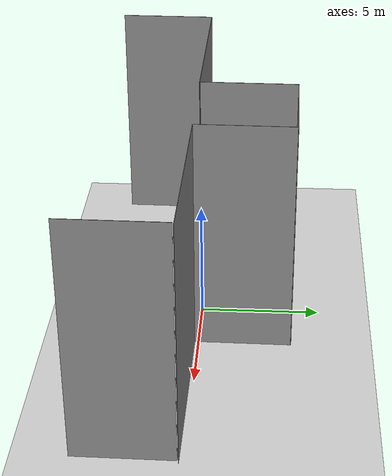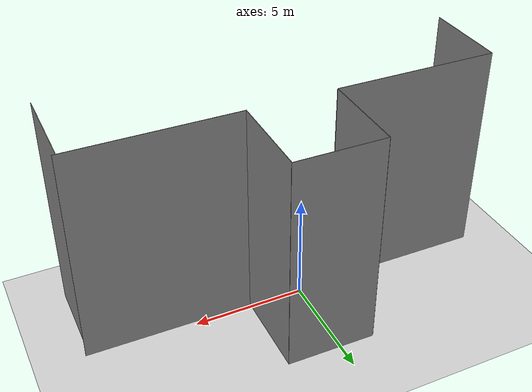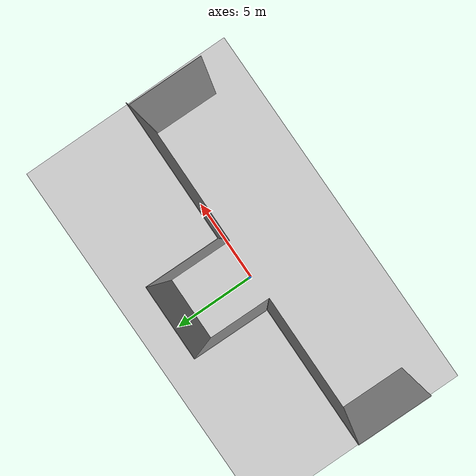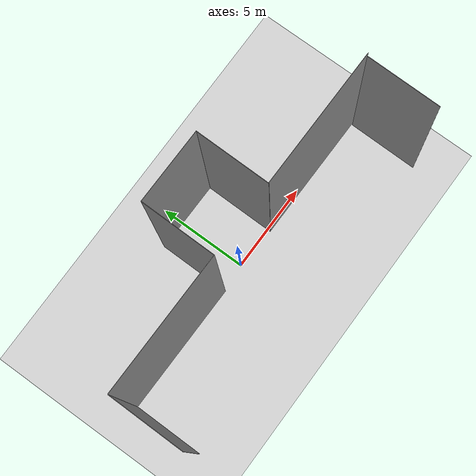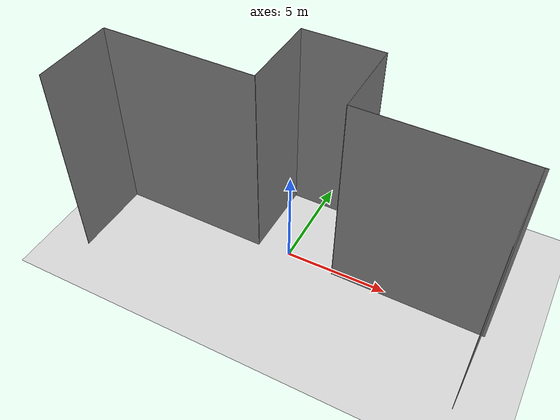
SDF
<sdf version="1.6">
 <world name="default">
  <model name="ground_plane">
   <static>1</static>
   <link name="link">
    <collision name="collision">
     <geometry><plane><normal>0 0 1</normal><size>100 100</size></plane></geometry>
     <surface>
      <contact><collide_bitmask>65535</collide_bitmask></contact>
      <friction><ode><mu>100</mu><mu2>50</mu2></ode></friction>
     </surface>
    </collision>
    <visual name="visual">
     <cast_shadows>0</cast_shadows>
     <geometry><plane><normal>0 0 1</normal><size>100 100</size></plane></geometry>
     <material>
      <script><uri>file://media/materials/scripts/gazebo.material</uri><name>Gazebo/Grey</name></script>
     </material>
    </visual>
   </link>
  </model>
  <model name="Tee-Parking">
   <model name="Tee-Hangar">
    <link name="link_1">
     <inertial>
      <mass>1</mass>
      <inertia>
       <ixx>0.166667</ixx>
       <ixy>0</ixy>
       <ixz>0</ixz>
       <iyy>0.166667</iyy>
       <iyz>0</iyz>
       <izz>0.166667</izz>
      </inertia>
     </inertial>
     <pose>-0.023082 -3.44582 0 0 -0 0</pose>
     <visual name="visual">
      <geometry><box><size>4 0.02 10</size></box></geometry>
      <material>
       <lighting>1</lighting>
       <script><uri>file://media/materials/scripts/gazebo.material</uri><name>Gazebo/Grey</name></script>
       <shader type="pixel"><normal_map>__default__</normal_map></shader>
       <ambient>0.3 0.3 0.3 1</ambient>
       <diffuse>0.7 0.7 0.7 1</diffuse>
       <specular>0.01 0.01 0.01 1</specular>
       <emissive>0 0 0 1</emissive>
      </material>
     </visual>
     <collision name="collision">
      <geometry><box><size>4 0.02 10</size></box></geometry>
      <surface>
       <friction>
        <ode><mu>1</mu><mu2>1</mu2><fdir1>0 0 0</fdir1><slip1>0</slip1><slip2>0</slip2></ode>
        <torsional>
         <coefficient>1</coefficient>
         <patch_radius>0</patch_radius>
         <surface_radius>0</surface_radius>
         <use_patch_radius>1</use_patch_radius>
         <ode><slip>0</slip></ode>
        </torsional>
       </friction>
       <bounce><restitution_coefficient>0</restitution_coefficient><threshold>1e+06</threshold></bounce>
       <contact>
        <collide_without_contact>0</collide_without_contact>
        <collide_without_contact_bitmask>1</collide_without_contact_bitmask>
        <collide_bitmask>1</collide_bitmask>
        <ode>
         <soft_cfm>0</soft_cfm>
         <soft_erp>0.2</soft_erp>
         <kp>1e+13</kp>
         <kd>1</kd>
         <max_vel>0.01</max_vel>
         <min_depth>0</min_depth>
        </ode>
        <bullet>
         <split_impulse>1</split_impulse>
         <split_impulse_penetration_threshold>-0.01</split_impulse_penetration_threshold>
         <soft_cfm>0</soft_cfm>
         <soft_erp>0.2</soft_erp>
         <kp>1e+13</kp>
         <kd>1</kd>
        </bullet>
       </contact>
      </surface>
     </collision>
    </link>
    <link name="link_1_clone">
     <inertial>
      <mass>1</mass>
      <inertia>
       <ixx>0.166667</ixx>
       <ixy>0</ixy>
       <ixz>0</ixz>
       <iyy>0.166667</iyy>
       <iyz>0</iyz>
       <izz>0.166667</izz>
      </inertia>
     </inertial>
     <pose>-5.75854 0.547567 0 0 -0 0</pose>
     <visual name="visual">
      <geometry><box><size>7.5 0.02 10</size></box></geometry>
      <material>
       <lighting>1</lighting>
       <script><uri>file://media/materials/scripts/gazebo.material</uri><name>Gazebo/Grey</name></script>
       <shader type="pixel"><normal_map>__default__</normal_map></shader>
       <ambient>0.3 0.3 0.3 1</ambient>
       <diffuse>0.7 0.7 0.7 1</diffuse>
       <specular>0.01 0.01 0.01 1</specular>
       <emissive>0 0 0 1</emissive>
      </material>
     </visual>
     <collision name="collision">
      <geometry><box><size>7.5 0.02 10</size></box></geometry>
      <surface>
       <friction>
        <ode><mu>1</mu><mu2>1</mu2><fdir1>0 0 0</fdir1><slip1>0</slip1><slip2>0</slip2></ode>
        <torsional>
         <coefficient>1</coefficient>
         <patch_radius>0</patch_radius>
         <surface_radius>0</surface_radius>
         <use_patch_radius>1</use_patch_radius>
         <ode><slip>0</slip></ode>
        </torsional>
       </friction>
       <bounce><restitution_coefficient>0</restitution_coefficient><threshold>1e+06</threshold></bounce>
       <contact>
        <collide_without_contact>0</collide_without_contact>
        <collide_without_contact_bitmask>1</collide_without_contact_bitmask>
        <collide_bitmask>1</collide_bitmask>
        <ode>
         <soft_cfm>0</soft_cfm>
         <soft_erp>0.2</soft_erp>
         <kp>1e+13</kp>
         <kd>1</kd>
         <max_vel>0.01</max_vel>
         <min_depth>0</min_depth>
        </ode>
        <bullet>
         <split_impulse>1</split_impulse>
         <split_impulse_penetration_threshold>-0.01</split_impulse_penetration_threshold>
         <soft_cfm>0</soft_cfm>
         <soft_erp>0.2</soft_erp>
         <kp>1e+13</kp>
         <kd>1</kd>
        </bullet>
       </contact>
      </surface>
     </collision>
    </link>
    <link name="link_1_clone_clone">
     <inertial>
      <mass>1</mass>
      <inertia>
       <ixx>0.166667</ixx>
       <ixy>0</ixy>
       <ixz>0</ixz>
       <iyy>0.166667</iyy>
       <iyz>0</iyz>
       <izz>0.166667</izz>
      </inertia>
     </inertial>
     <pose>5.7142 0.576246 0 0 -0 0</pose>
     <visual name="visual">
      <geometry><box><size>7.5 0.02 10</size></box></geometry>
      <material>
       <lighting>1</lighting>
       <script><uri>file://media/materials/scripts/gazebo.material</uri><name>Gazebo/Grey</name></script>
       <shader type="pixel"><normal_map>__default__</normal_map></shader>
       <ambient>0.3 0.3 0.3 1</ambient>
       <diffuse>0.7 0.7 0.7 1</diffuse>
       <specular>0.01 0.01 0.01 1</specular>
       <emissive>0 0 0 1</emissive>
      </material>
     </visual>
     <collision name="collision">
      <geometry><box><size>7.5 0.02 10</size></box></geometry>
      <surface>
       <friction>
        <ode><mu>1</mu><mu2>1</mu2><fdir1>0 0 0</fdir1><slip1>0</slip1><slip2>0</slip2></ode>
        <torsional>
         <coefficient>1</coefficient>
         <patch_radius>0</patch_radius>
         <surface_radius>0</surface_radius>
         <use_patch_radius>1</use_patch_radius>
         <ode><slip>0</slip></ode>
        </torsional>
       </friction>
       <bounce><restitution_coefficient>0</restitution_coefficient><threshold>1e+06</threshold></bounce>
       <contact>
        <collide_without_contact>0</collide_without_contact>
        <collide_without_contact_bitmask>1</collide_without_contact_bitmask>
        <collide_bitmask>1</collide_bitmask>
        <ode>
         <soft_cfm>0</soft_cfm>
         <soft_erp>0.2</soft_erp>
         <kp>1e+13</kp>
         <kd>1</kd>
         <max_vel>0.01</max_vel>
         <min_depth>0</min_depth>
        </ode>
        <bullet>
         <split_impulse>1</split_impulse>
         <split_impulse_penetration_threshold>-0.01</split_impulse_penetration_threshold>
         <soft_cfm>0</soft_cfm>
         <soft_erp>0.2</soft_erp>
         <kp>1e+13</kp>
         <kd>1</kd>
        </bullet>
       </contact>
      </surface>
     </collision>
    </link>
    <link name="link_2">
     <inertial>
      <mass>1</mass>
      <inertia>
       <ixx>0.166667</ixx>
       <ixy>0</ixy>
       <ixz>0</ixz>
       <iyy>0.166667</iyy>
       <iyz>0</iyz>
       <izz>0.166667</izz>
      </inertia>
     </inertial>
     <pose>1.97638 -1.45197 0 0 -0 0</pose>
     <visual name="visual">
      <geometry><box><size>0.02 4 10</size></box></geometry>
      <material>
       <lighting>1</lighting>
       <script><uri>file://media/materials/scripts/gazebo.material</uri><name>Gazebo/Grey</name></script>
       <shader type="pixel"><normal_map>__default__</normal_map></shader>
       <ambient>0.3 0.3 0.3 1</ambient>
       <diffuse>0.7 0.7 0.7 1</diffuse>
       <specular>0.01 0.01 0.01 1</specular>
       <emissive>0 0 0 1</emissive>
      </material>
     </visual>
     <collision name="collision">
      <geometry><box><size>0.02 4 10</size></box></geometry>
      <surface>
       <friction>
        <ode><mu>1</mu><mu2>1</mu2><fdir1>0 0 0</fdir1><slip1>0</slip1><slip2>0</slip2></ode>
        <torsional>
         <coefficient>1</coefficient>
         <patch_radius>0</patch_radius>
         <surface_radius>0</surface_radius>
         <use_patch_radius>1</use_patch_radius>
         <ode><slip>0</slip></ode>
        </torsional>
       </friction>
       <bounce><restitution_coefficient>0</restitution_coefficient><threshold>1e+06</threshold></bounce>
       <contact>
        <collide_without_contact>0</collide_without_contact>
        <collide_without_contact_bitmask>1</collide_without_contact_bitmask>
        <collide_bitmask>1</collide_bitmask>
        <ode>
         <soft_cfm>0</soft_cfm>
         <soft_erp>0.2</soft_erp>
         <kp>1e+13</kp>
         <kd>1</kd>
         <max_vel>0.01</max_vel>
         <min_depth>0</min_depth>
        </ode>
        <bullet>
         <split_impulse>1</split_impulse>
         <split_impulse_penetration_threshold>-0.01</split_impulse_penetration_threshold>
         <soft_cfm>0</soft_cfm>
         <soft_erp>0.2</soft_erp>
         <kp>1e+13</kp>
         <kd>1</kd>
        </bullet>
       </contact>
      </surface>
     </collision>
    </link>
    <link name="link_2_clone">
     <inertial>
      <mass>1</mass>
      <inertia>
       <ixx>0.166667</ixx>
       <ixy>0</ixy>
       <ixz>0</ixz>
       <iyy>0.166667</iyy>
       <iyz>0</iyz>
       <izz>0.166667</izz>
      </inertia>
     </inertial>
     <pose>-2.006 -1.43014 0 0 -0 0</pose>
     <visual name="visual">
      <geometry><box><size>0.02 4 10</size></box></geometry>
      <material>
       <lighting>1</lighting>
       <script><uri>file://media/materials/scripts/gazebo.material</uri><name>Gazebo/Grey</name></script>
       <shader type="pixel"><normal_map>__default__</normal_map></shader>
       <ambient>0.3 0.3 0.3 1</ambient>
       <diffuse>0.7 0.7 0.7 1</diffuse>
       <specular>0.01 0.01 0.01 1</specular>
       <emissive>0 0 0 1</emissive>
      </material>
     </visual>
     <collision name="collision">
      <geometry><box><size>0.02 4 10</size></box></geometry>
      <surface>
       <friction>
        <ode><mu>1</mu><mu2>1</mu2><fdir1>0 0 0</fdir1><slip1>0</slip1><slip2>0</slip2></ode>
        <torsional>
         <coefficient>1</coefficient>
         <patch_radius>0</patch_radius>
         <surface_radius>0</surface_radius>
         <use_patch_radius>1</use_patch_radius>
         <ode><slip>0</slip></ode>
        </torsional>
       </friction>
       <bounce><restitution_coefficient>0</restitution_coefficient><threshold>1e+06</threshold></bounce>
       <contact>
        <collide_without_contact>0</collide_without_contact>
        <collide_without_contact_bitmask>1</collide_without_contact_bitmask>
        <collide_bitmask>1</collide_bitmask>
        <ode>
         <soft_cfm>0</soft_cfm>
         <soft_erp>0.2</soft_erp>
         <kp>1e+13</kp>
         <kd>1</kd>
         <max_vel>0.01</max_vel>
         <min_depth>0</min_depth>
        </ode>
        <bullet>
         <split_impulse>1</split_impulse>
         <split_impulse_penetration_threshold>-0.01</split_impulse_penetration_threshold>
         <soft_cfm>0</soft_cfm>
         <soft_erp>0.2</soft_erp>
         <kp>1e+13</kp>
         <kd>1</kd>
        </bullet>
       </contact>
      </surface>
     </collision>
    </link>
    <link name="link_2_clone_0">
     <inertial>
      <mass>1</mass>
      <inertia>
       <ixx>0.166667</ixx>
       <ixy>0</ixy>
       <ixz>0</ixz>
       <iyy>0.166667</iyy>
       <iyz>0</iyz>
       <izz>0.166667</izz>
      </inertia>
     </inertial>
     <pose>9.4605 2.6022 0 0 -0 0</pose>
     <visual name="visual">
      <geometry><box><size>0.02 4 10</size></box></geometry>
      <material>
       <lighting>1</lighting>
       <script><uri>file://media/materials/scripts/gazebo.material</uri><name>Gazebo/Grey</name></script>
       <shader type="pixel"><normal_map>__default__</normal_map></shader>
       <ambient>0.3 0.3 0.3 1</ambient>
       <diffuse>0.7 0.7 0.7 1</diffuse>
       <specular>0.01 0.01 0.01 1</specular>
       <emissive>0 0 0 1</emissive>
      </material>
     </visual>
     <collision name="collision">
      <geometry><box><size>0.02 4 10</size></box></geometry>
      <surface>
       <friction>
        <ode><mu>1</mu><mu2>1</mu2><fdir1>0 0 0</fdir1><slip1>0</slip1><slip2>0</slip2></ode>
        <torsional>
         <coefficient>1</coefficient>
         <patch_radius>0</patch_radius>
         <surface_radius>0</surface_radius>
         <use_patch_radius>1</use_patch_radius>
         <ode><slip>0</slip></ode>
        </torsional>
       </friction>
       <bounce><restitution_coefficient>0</restitution_coefficient><threshold>1e+06</threshold></bounce>
       <contact>
        <collide_without_contact>0</collide_without_contact>
        <collide_without_contact_bitmask>1</collide_without_contact_bitmask>
        <collide_bitmask>1</collide_bitmask>
        <ode>
         <soft_cfm>0</soft_cfm>
         <soft_erp>0.2</soft_erp>
         <kp>1e+13</kp>
         <kd>1</kd>
         <max_vel>0.01</max_vel>
         <min_depth>0</min_depth>
        </ode>
        <bullet>
         <split_impulse>1</split_impulse>
         <split_impulse_penetration_threshold>-0.01</split_impulse_penetration_threshold>
         <soft_cfm>0</soft_cfm>
         <soft_erp>0.2</soft_erp>
         <kp>1e+13</kp>
         <kd>1</kd>
        </bullet>
       </contact>
      </surface>
     </collision>
    </link>
    <link name="link_2_clone_0_clone">
     <inertial>
      <mass>1</mass>
      <inertia>
       <ixx>0.166667</ixx>
       <ixy>0</ixy>
       <ixz>0</ixz>
       <iyy>0.166667</iyy>
       <iyz>0</iyz>
       <izz>0.166667</izz>
      </inertia>
     </inertial>
     <pose>-9.36345 2.60193 0 0 -0 0</pose>
     <visual name="visual">
      <geometry><box><size>0.02 4 10</size></box></geometry>
      <material>
       <lighting>1</lighting>
       <script><uri>file://media/materials/scripts/gazebo.material</uri><name>Gazebo/Grey</name></script>
       <shader type="pixel"><normal_map>__default__</normal_map></shader>
       <ambient>0.3 0.3 0.3 1</ambient>
       <diffuse>0.7 0.7 0.7 1</diffuse>
       <specular>0.01 0.01 0.01 1</specular>
       <emissive>0 0 0 1</emissive>
      </material>
     </visual>
     <collision name="collision">
      <geometry><box><size>0.02 4 10</size></box></geometry>
      <surface>
       <friction>
        <ode><mu>1</mu><mu2>1</mu2><fdir1>0 0 0</fdir1><slip1>0</slip1><slip2>0</slip2></ode>
        <torsional>
         <coefficient>1</coefficient>
         <patch_radius>0</patch_radius>
         <surface_radius>0</surface_radius>
         <use_patch_radius>1</use_patch_radius>
         <ode><slip>0</slip></ode>
        </torsional>
       </friction>
       <bounce><restitution_coefficient>0</restitution_coefficient><threshold>1e+06</threshold></bounce>
       <contact>
        <collide_without_contact>0</collide_without_contact>
        <collide_without_contact_bitmask>1</collide_without_contact_bitmask>
        <collide_bitmask>1</collide_bitmask>
        <ode>
         <soft_cfm>0</soft_cfm>
         <soft_erp>0.2</soft_erp>
         <kp>1e+13</kp>
         <kd>1</kd>
         <max_vel>0.01</max_vel>
         <min_depth>0</min_depth>
        </ode>
        <bullet>
         <split_impulse>1</split_impulse>
         <split_impulse_penetration_threshold>-0.01</split_impulse_penetration_threshold>
         <soft_cfm>0</soft_cfm>
         <soft_erp>0.2</soft_erp>
         <kp>1e+13</kp>
         <kd>1</kd>
        </bullet>
       </contact>
      </surface>
     </collision>
    </link>
    <static>0</static>
    <pose>8.31225 -5.02213 0.606281 -1.55938 0 0</pose>
   </model>
   <joint name="link_1_JOINT_8" type="fixed">
    <parent>Tee-Hangar::link_1</parent>
    <child>Tee-Hangar::link_2_clone</child>
    <physics>
     <ode><limit><cfm>0</cfm><erp>0.2</erp></limit><suspension><cfm>0</cfm><erp>0.2</erp></suspension></ode>
    </physics>
   </joint>
   <joint name="link_1_clone_JOINT_9" type="fixed">
    <parent>Tee-Hangar::link_1_clone</parent>
    <child>Tee-Hangar::link_2_clone_0_clone</child>
    <physics>
     <ode><limit><cfm>0</cfm><erp>0.2</erp></limit><suspension><cfm>0</cfm><erp>0.2</erp></suspension></ode>
    </physics>
   </joint>
   <joint name="link_1_clone_clone_JOINT_5" type="fixed">
    <parent>Tee-Hangar::link_1_clone_clone</parent>
    <child>Tee-Hangar::link_2</child>
    <physics>
     <ode><limit><cfm>0</cfm><erp>0.2</erp></limit><suspension><cfm>0</cfm><erp>0.2</erp></suspension></ode>
    </physics>
   </joint>
   <joint name="link_2_JOINT_6" type="fixed">
    <parent>Tee-Hangar::link_2</parent>
    <child>Tee-Hangar::link_1</child>
    <physics>
     <ode><limit><cfm>0</cfm><erp>0.2</erp></limit><suspension><cfm>0</cfm><erp>0.2</erp></suspension></ode>
    </physics>
   </joint>
   <joint name="link_2_clone_0_JOINT_4" type="fixed">
    <parent>Tee-Hangar::link_2_clone_0</parent>
    <child>Tee-Hangar::link_1_clone_clone</child>
    <physics>
     <ode><limit><cfm>0</cfm><erp>0.2</erp></limit><suspension><cfm>0</cfm><erp>0.2</erp></suspension></ode>
    </physics>
   </joint>
   <joint name="link_2_clone_JOINT_7" type="fixed">
    <parent>Tee-Hangar::link_2_clone</parent>
    <child>Tee-Hangar::link_1_clone</child>
    <physics>
     <ode><limit><cfm>0</cfm><erp>0.2</erp></limit><suspension><cfm>0</cfm><erp>0.2</erp></suspension></ode>
    </physics>
   </joint>
   <static>1</static>
   <pose>8.6827 -0.338933 10.0149 1.55938 -0 3.13196</pose>
  </model>
 </world>
</sdf>
